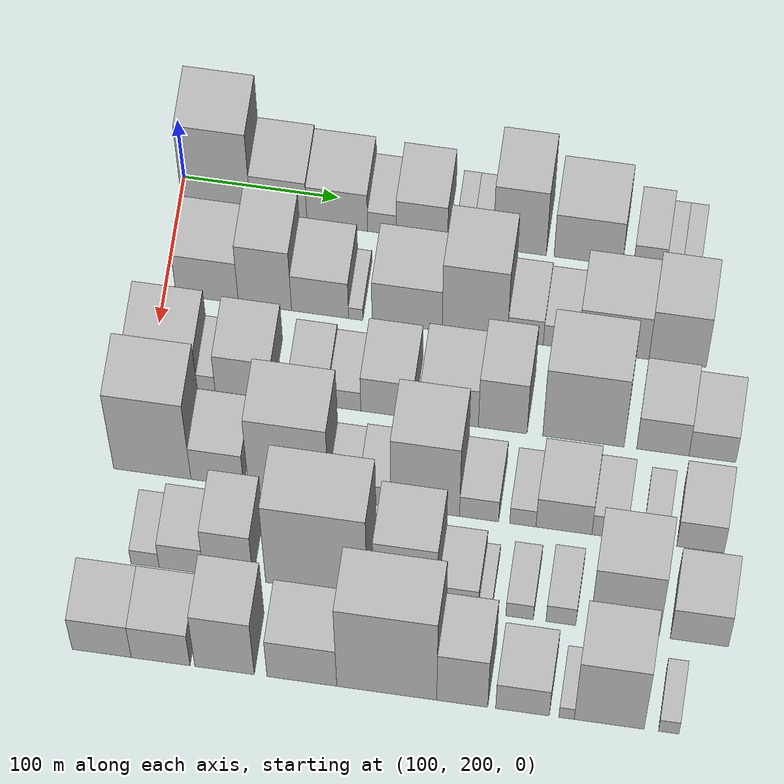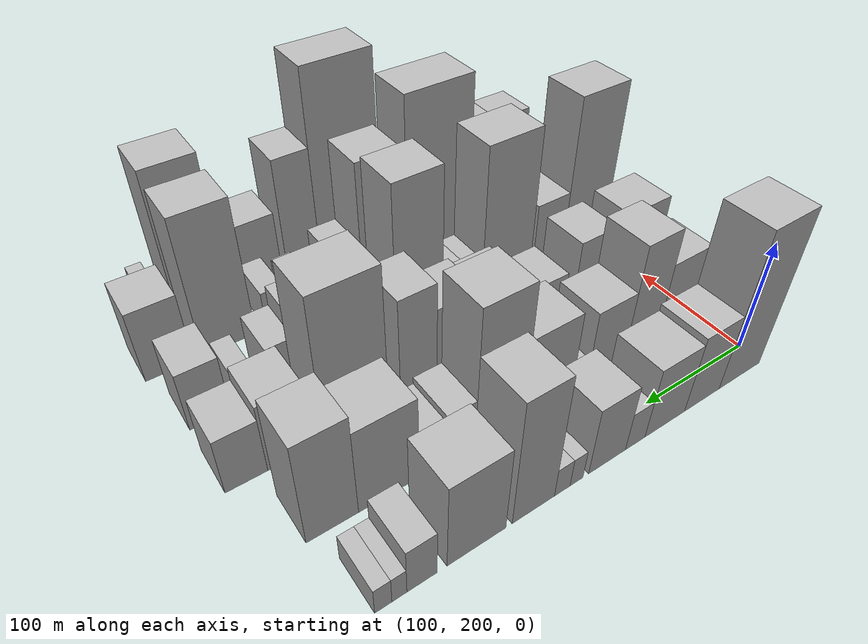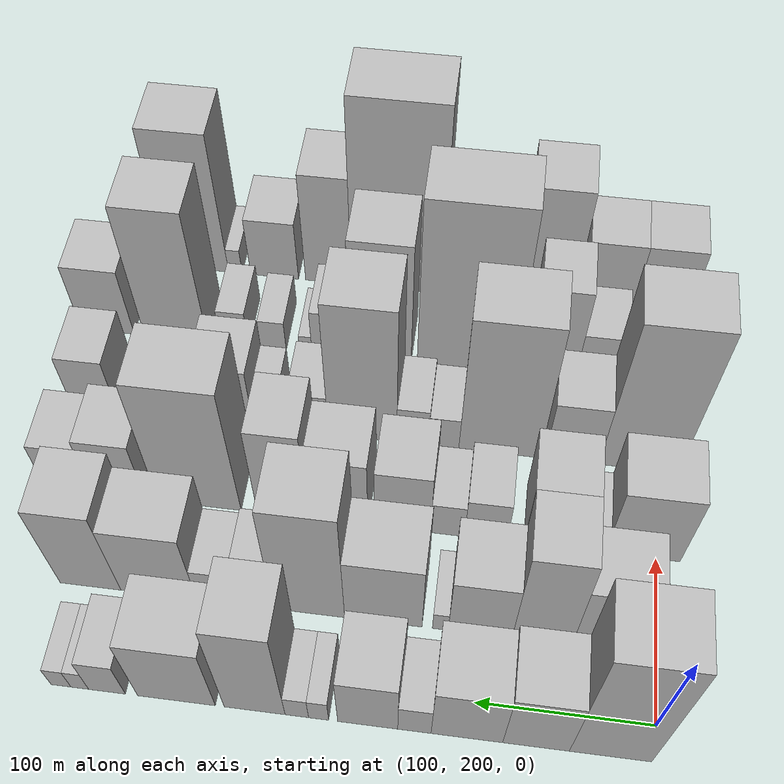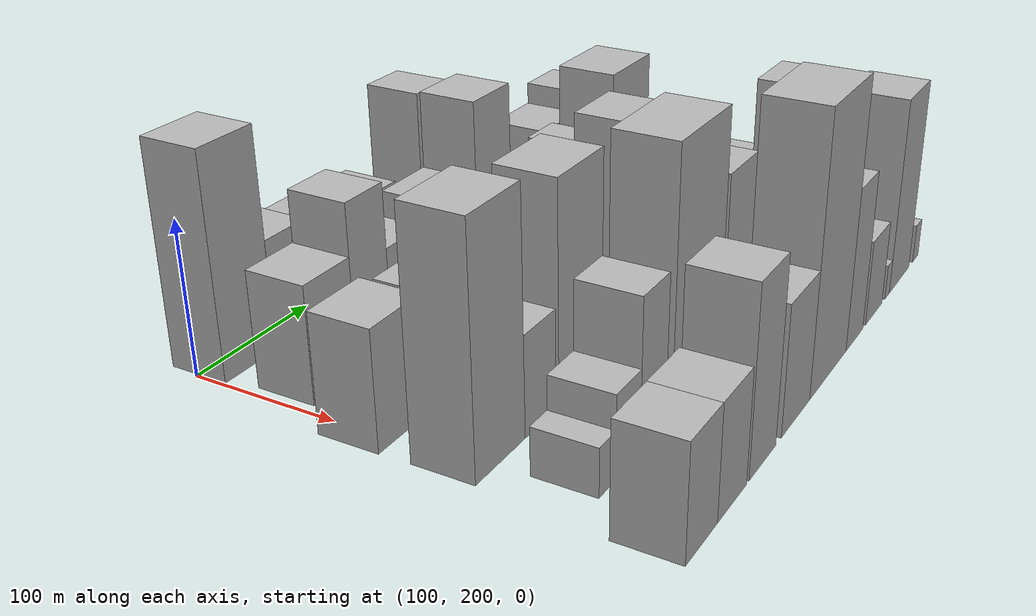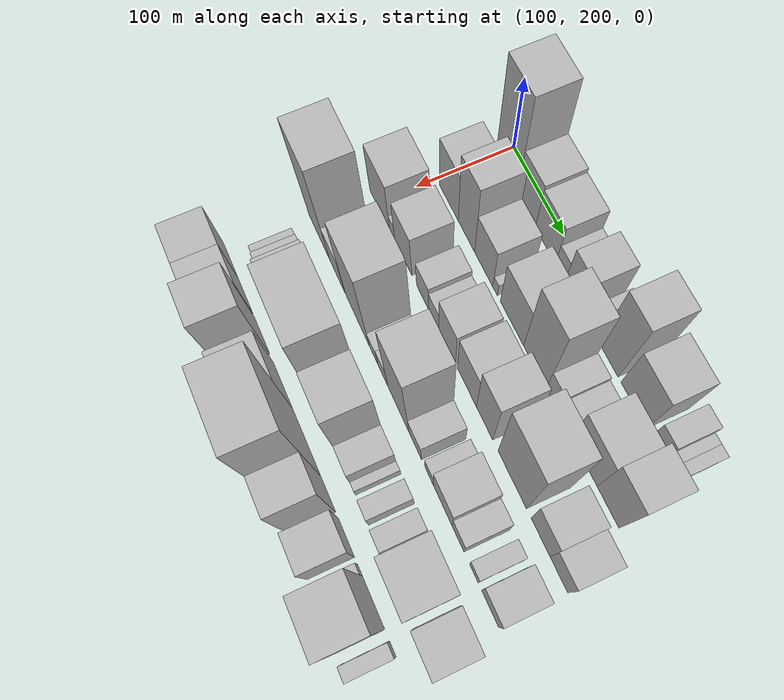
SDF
<sdf version="1.6">
 <world name="default">
  <model name="building_32">
   <static>1</static>
   <pose>100.0000 224.2471 0 0.000000 0.000000 0.000000</pose>
   <link name="link">
    <pose>0 0 72.00 0 0 0</pose>
    <collision name="collision"><geometry><box><size>40.0000 44.4804 144.0000</size></box></geometry></collision>
    <visual name="visual">
     <cast_shadows>0</cast_shadows>
     <geometry><box><size>40.0000 44.4804 144.0000</size></box></geometry>
     <material>
      <script>
       <uri>model://HANNAS_wall/materials/scripts</uri>
       <uri>model://HANNAS_wall/materials/textures</uri>
       <name>vrc/HANNAS_wall</name>
      </script>
     </material>
    </visual>
   </link>
  </model>
  <model name="building_33">
   <static>1</static>
   <pose>100.0000 264.6315 0 0.000000 0.000000 0.000000</pose>
   <link name="link">
    <pose>0 0 36.00 0 0 0</pose>
    <collision name="collision"><geometry><box><size>40.0000 36.2884 72.0000</size></box></geometry></collision>
    <visual name="visual">
     <cast_shadows>0</cast_shadows>
     <geometry><box><size>40.0000 36.2884 72.0000</size></box></geometry>
     <material>
      <script>
       <uri>model://HANNAS_wall/materials/scripts</uri>
       <uri>model://HANNAS_wall/materials/textures</uri>
       <name>vrc/HANNAS_wall</name>
      </script>
     </material>
    </visual>
   </link>
  </model>
  <model name="building_34">
   <static>1</static>
   <pose>100.0000 302.4038 0 0.000000 0.000000 0.000000</pose>
   <link name="link">
    <pose>0 0 33.00 0 0 0</pose>
    <collision name="collision"><geometry><box><size>40.0000 39.2563 66.0000</size></box></geometry></collision>
    <visual name="visual">
     <cast_shadows>0</cast_shadows>
     <geometry><box><size>40.0000 39.2563 66.0000</size></box></geometry>
     <material>
      <script>
       <uri>model://HANNAS_wall/materials/scripts</uri>
       <uri>model://HANNAS_wall/materials/textures</uri>
       <name>vrc/HANNAS_wall</name>
      </script>
     </material>
    </visual>
   </link>
  </model>
  <model name="building_35">
   <static>1</static>
   <pose>100.0000 331.2191 0 0.000000 0.000000 0.000000</pose>
   <link name="link">
    <pose>0 0 18.00 0 0 0</pose>
    <collision name="collision"><geometry><box><size>40.0000 18.3743 36.0000</size></box></geometry></collision>
    <visual name="visual">
     <cast_shadows>0</cast_shadows>
     <geometry><box><size>40.0000 18.3743 36.0000</size></box></geometry>
     <material>
      <script>
       <uri>model://HANNAS_wall/materials/scripts</uri>
       <uri>model://HANNAS_wall/materials/textures</uri>
       <name>vrc/HANNAS_wall</name>
      </script>
     </material>
    </visual>
   </link>
  </model>
  <model name="building_36">
   <static>1</static>
   <pose>100.0000 357.0505 0 0.000000 0.000000 0.000000</pose>
   <link name="link">
    <pose>0 0 31.50 0 0 0</pose>
    <collision name="collision"><geometry><box><size>40.0000 33.2884 63.0000</size></box></geometry></collision>
    <visual name="visual">
     <cast_shadows>0</cast_shadows>
     <geometry><box><size>40.0000 33.2884 63.0000</size></box></geometry>
     <material>
      <script>
       <uri>model://HANNAS_wall/materials/scripts</uri>
       <uri>model://HANNAS_wall/materials/textures</uri>
       <name>vrc/HANNAS_wall</name>
      </script>
     </material>
    </visual>
   </link>
  </model>
  <model name="building_37">
   <static>1</static>
   <pose>100.0000 384.2856 0 0.000000 0.000000 0.000000</pose>
   <link name="link">
    <pose>0 0 13.50 0 0 0</pose>
    <collision name="collision"><geometry><box><size>40.0000 11.1817 27.0000</size></box></geometry></collision>
    <visual name="visual">
     <cast_shadows>0</cast_shadows>
     <geometry><box><size>40.0000 11.1817 27.0000</size></box></geometry>
     <material>
      <script>
       <uri>model://HANNAS_wall/materials/scripts</uri>
       <uri>model://HANNAS_wall/materials/textures</uri>
       <name>vrc/HANNAS_wall</name>
      </script>
     </material>
    </visual>
   </link>
  </model>
  <model name="building_38">
   <static>1</static>
   <pose>100.0000 396.4469 0 0.000000 0.000000 0.000000</pose>
   <link name="link">
    <pose>0 0 13.50 0 0 0</pose>
    <collision name="collision"><geometry><box><size>40.0000 13.1409 27.0000</size></box></geometry></collision>
    <visual name="visual">
     <cast_shadows>0</cast_shadows>
     <geometry><box><size>40.0000 13.1409 27.0000</size></box></geometry>
     <material>
      <script>
       <uri>model://HANNAS_wall/materials/scripts</uri>
       <uri>model://HANNAS_wall/materials/textures</uri>
       <name>vrc/HANNAS_wall</name>
      </script>
     </material>
    </visual>
   </link>
  </model>
  <model name="building_39">
   <static>1</static>
   <pose>100.0000 420.1435 0 0.000000 0.000000 0.000000</pose>
   <link name="link">
    <pose>0 0 57.00 0 0 0</pose>
    <collision name="collision"><geometry><box><size>40.0000 34.2521 114.0000</size></box></geometry></collision>
    <visual name="visual">
     <cast_shadows>0</cast_shadows>
     <geometry><box><size>40.0000 34.2521 114.0000</size></box></geometry>
     <material>
      <script>
       <uri>model://HANNAS_wall/materials/scripts</uri>
       <uri>model://HANNAS_wall/materials/textures</uri>
       <name>vrc/HANNAS_wall</name>
      </script>
     </material>
    </visual>
   </link>
  </model>
  <model name="building_40">
   <static>1</static>
   <pose>100.0000 464.3153 0 0.000000 0.000000 0.000000</pose>
   <link name="link">
    <pose>0 0 39.00 0 0 0</pose>
    <collision name="collision"><geometry><box><size>40.0000 44.0917 78.0000</size></box></geometry></collision>
    <visual name="visual">
     <cast_shadows>0</cast_shadows>
     <geometry><box><size>40.0000 44.0917 78.0000</size></box></geometry>
     <material>
      <script>
       <uri>model://HANNAS_wall/materials/scripts</uri>
       <uri>model://HANNAS_wall/materials/textures</uri>
       <name>vrc/HANNAS_wall</name>
      </script>
     </material>
    </visual>
   </link>
  </model>
  <model name="building_41">
   <static>1</static>
   <pose>100.0000 503.8851 0 0.000000 0.000000 0.000000</pose>
   <link name="link">
    <pose>0 0 21.00 0 0 0</pose>
    <collision name="collision"><geometry><box><size>40.0000 21.0478 42.0000</size></box></geometry></collision>
    <visual name="visual">
     <cast_shadows>0</cast_shadows>
     <geometry><box><size>40.0000 21.0478 42.0000</size></box></geometry>
     <material>
      <script>
       <uri>model://HANNAS_wall/materials/scripts</uri>
       <uri>model://HANNAS_wall/materials/textures</uri>
       <name>vrc/HANNAS_wall</name>
      </script>
     </material>
    </visual>
   </link>
  </model>
  <model name="building_42">
   <static>1</static>
   <pose>100.0000 519.4775 0 0.000000 0.000000 0.000000</pose>
   <link name="link">
    <pose>0 0 12.00 0 0 0</pose>
    <collision name="collision"><geometry><box><size>40.0000 10.1371 24.0000</size></box></geometry></collision>
    <visual name="visual">
     <cast_shadows>0</cast_shadows>
     <geometry><box><size>40.0000 10.1371 24.0000</size></box></geometry>
     <material>
      <script>
       <uri>model://HANNAS_wall/materials/scripts</uri>
       <uri>model://HANNAS_wall/materials/textures</uri>
       <name>vrc/HANNAS_wall</name>
      </script>
     </material>
    </visual>
   </link>
  </model>
  <model name="building_43">
   <static>1</static>
   <pose>100.0000 530.2775 0 0.000000 0.000000 0.000000</pose>
   <link name="link">
    <pose>0 0 12.00 0 0 0</pose>
    <collision name="collision"><geometry><box><size>40.0000 11.4629 24.0000</size></box></geometry></collision>
    <visual name="visual">
     <cast_shadows>0</cast_shadows>
     <geometry><box><size>40.0000 11.4629 24.0000</size></box></geometry>
     <material>
      <script>
       <uri>model://HANNAS_wall/materials/scripts</uri>
       <uri>model://HANNAS_wall/materials/textures</uri>
       <name>vrc/HANNAS_wall</name>
      </script>
     </material>
    </visual>
   </link>
  </model>
  <model name="building_90">
   <static>1</static>
   <pose>160.0000 227.5681 0 0.000000 0.000000 0.000000</pose>
   <link name="link">
    <pose>0 0 37.50 0 0 0</pose>
    <collision name="collision"><geometry><box><size>40.0000 40.2094 75.0000</size></box></geometry></collision>
    <visual name="visual">
     <cast_shadows>0</cast_shadows>
     <geometry><box><size>40.0000 40.2094 75.0000</size></box></geometry>
     <material>
      <script>
       <uri>model://HANNAS_wall/materials/scripts</uri>
       <uri>model://HANNAS_wall/materials/textures</uri>
       <name>vrc/HANNAS_wall</name>
      </script>
     </material>
    </visual>
   </link>
  </model>
  <model name="building_91">
   <static>1</static>
   <pose>160.0000 264.7622 0 0.000000 0.000000 0.000000</pose>
   <link name="link">
    <pose>0 0 54.00 0 0 0</pose>
    <collision name="collision"><geometry><box><size>40.0000 34.1789 108.0000</size></box></geometry></collision>
    <visual name="visual">
     <cast_shadows>0</cast_shadows>
     <geometry><box><size>40.0000 34.1789 108.0000</size></box></geometry>
     <material>
      <script>
       <uri>model://HANNAS_wall/materials/scripts</uri>
       <uri>model://HANNAS_wall/materials/textures</uri>
       <name>vrc/HANNAS_wall</name>
      </script>
     </material>
    </visual>
   </link>
  </model>
  <model name="building_92">
   <static>1</static>
   <pose>160.0000 300.2078 0 0.000000 0.000000 0.000000</pose>
   <link name="link">
    <pose>0 0 33.00 0 0 0</pose>
    <collision name="collision"><geometry><box><size>40.0000 36.7122 66.0000</size></box></geometry></collision>
    <visual name="visual">
     <cast_shadows>0</cast_shadows>
     <geometry><box><size>40.0000 36.7122 66.0000</size></box></geometry>
     <material>
      <script>
       <uri>model://HANNAS_wall/materials/scripts</uri>
       <uri>model://HANNAS_wall/materials/textures</uri>
       <name>vrc/HANNAS_wall</name>
      </script>
     </material>
    </visual>
   </link>
  </model>
  <model name="building_93">
   <static>1</static>
   <pose>160.0000 323.1250 0 0.000000 0.000000 0.000000</pose>
   <link name="link">
    <pose>0 0 10.50 0 0 0</pose>
    <collision name="collision"><geometry><box><size>40.0000 9.1222 21.0000</size></box></geometry></collision>
    <visual name="visual">
     <cast_shadows>0</cast_shadows>
     <geometry><box><size>40.0000 9.1222 21.0000</size></box></geometry>
     <material>
      <script>
       <uri>model://HANNAS_wall/materials/scripts</uri>
       <uri>model://HANNAS_wall/materials/textures</uri>
       <name>vrc/HANNAS_wall</name>
      </script>
     </material>
    </visual>
   </link>
  </model>
  <model name="building_94">
   <static>1</static>
   <pose>160.0000 356.1797 0 0.000000 0.000000 0.000000</pose>
   <link name="link">
    <pose>0 0 37.50 0 0 0</pose>
    <collision name="collision"><geometry><box><size>40.0000 44.9871 75.0000</size></box></geometry></collision>
    <visual name="visual">
     <cast_shadows>0</cast_shadows>
     <geometry><box><size>40.0000 44.9871 75.0000</size></box></geometry>
     <material>
      <script>
       <uri>model://HANNAS_wall/materials/scripts</uri>
       <uri>model://HANNAS_wall/materials/textures</uri>
       <name>vrc/HANNAS_wall</name>
      </script>
     </material>
    </visual>
   </link>
  </model>
  <model name="building_95">
   <static>1</static>
   <pose>160.0000 399.6302 0 0.000000 0.000000 0.000000</pose>
   <link name="link">
    <pose>0 0 63.00 0 0 0</pose>
    <collision name="collision"><geometry><box><size>40.0000 41.9140 126.0000</size></box></geometry></collision>
    <visual name="visual">
     <cast_shadows>0</cast_shadows>
     <geometry><box><size>40.0000 41.9140 126.0000</size></box></geometry>
     <material>
      <script>
       <uri>model://HANNAS_wall/materials/scripts</uri>
       <uri>model://HANNAS_wall/materials/textures</uri>
       <name>vrc/HANNAS_wall</name>
      </script>
     </material>
    </visual>
   </link>
  </model>
  <model name="building_96">
   <static>1</static>
   <pose>160.0000 432.0486 0 0.000000 0.000000 0.000000</pose>
   <link name="link">
    <pose>0 0 22.50 0 0 0</pose>
    <collision name="collision"><geometry><box><size>40.0000 22.9228 45.0000</size></box></geometry></collision>
    <visual name="visual">
     <cast_shadows>0</cast_shadows>
     <geometry><box><size>40.0000 22.9228 45.0000</size></box></geometry>
     <material>
      <script>
       <uri>model://HANNAS_wall/materials/scripts</uri>
       <uri>model://HANNAS_wall/materials/textures</uri>
       <name>vrc/HANNAS_wall</name>
      </script>
     </material>
    </visual>
   </link>
  </model>
  <model name="building_97">
   <static>1</static>
   <pose>160.0000 454.7128 0 0.000000 0.000000 0.000000</pose>
   <link name="link">
    <pose>0 0 19.50 0 0 0</pose>
    <collision name="collision"><geometry><box><size>40.0000 22.4056 39.0000</size></box></geometry></collision>
    <visual name="visual">
     <cast_shadows>0</cast_shadows>
     <geometry><box><size>40.0000 22.4056 39.0000</size></box></geometry>
     <material>
      <script>
       <uri>model://HANNAS_wall/materials/scripts</uri>
       <uri>model://HANNAS_wall/materials/textures</uri>
       <name>vrc/HANNAS_wall</name>
      </script>
     </material>
    </visual>
   </link>
  </model>
  <model name="building_98">
   <static>1</static>
   <pose>160.0000 488.5397 0 0.000000 0.000000 0.000000</pose>
   <link name="link">
    <pose>0 0 39.00 0 0 0</pose>
    <collision name="collision"><geometry><box><size>40.0000 45.2482 78.0000</size></box></geometry></collision>
    <visual name="visual">
     <cast_shadows>0</cast_shadows>
     <geometry><box><size>40.0000 45.2482 78.0000</size></box></geometry>
     <material>
      <script>
       <uri>model://HANNAS_wall/materials/scripts</uri>
       <uri>model://HANNAS_wall/materials/textures</uri>
       <name>vrc/HANNAS_wall</name>
      </script>
     </material>
    </visual>
   </link>
  </model>
  <model name="building_99">
   <static>1</static>
   <pose>160.0000 529.4853 0 0.000000 0.000000 0.000000</pose>
   <link name="link">
    <pose>0 0 46.50 0 0 0</pose>
    <collision name="collision"><geometry><box><size>40.0000 36.6429 93.0000</size></box></geometry></collision>
    <visual name="visual">
     <cast_shadows>0</cast_shadows>
     <geometry><box><size>40.0000 36.6429 93.0000</size></box></geometry>
     <material>
      <script>
       <uri>model://HANNAS_wall/materials/scripts</uri>
       <uri>model://HANNAS_wall/materials/textures</uri>
       <name>vrc/HANNAS_wall</name>
      </script>
     </material>
    </visual>
   </link>
  </model>
  <model name="building_139">
   <static>1</static>
   <pose>220.0000 208.1897 0 0.000000 0.000000 0.000000</pose>
   <link name="link">
    <pose>0 0 37.50 0 0 0</pose>
    <collision name="collision"><geometry><box><size>40.0000 44.5351 75.0000</size></box></geometry></collision>
    <visual name="visual">
     <cast_shadows>0</cast_shadows>
     <geometry><box><size>40.0000 44.5351 75.0000</size></box></geometry>
     <material>
      <script>
       <uri>model://HANNAS_wall/materials/scripts</uri>
       <uri>model://HANNAS_wall/materials/textures</uri>
       <name>vrc/HANNAS_wall</name>
      </script>
     </material>
    </visual>
   </link>
  </model>
  <model name="building_140">
   <static>1</static>
   <pose>220.0000 236.2144 0 0.000000 0.000000 0.000000</pose>
   <link name="link">
    <pose>0 0 13.50 0 0 0</pose>
    <collision name="collision"><geometry><box><size>40.0000 11.5143 27.0000</size></box></geometry></collision>
    <visual name="visual">
     <cast_shadows>0</cast_shadows>
     <geometry><box><size>40.0000 11.5143 27.0000</size></box></geometry>
     <material>
      <script>
       <uri>model://HANNAS_wall/materials/scripts</uri>
       <uri>model://HANNAS_wall/materials/textures</uri>
       <name>vrc/HANNAS_wall</name>
      </script>
     </material>
    </visual>
   </link>
  </model>
  <model name="building_141">
   <static>1</static>
   <pose>220.0000 260.5052 0 0.000000 0.000000 0.000000</pose>
   <link name="link">
    <pose>0 0 34.50 0 0 0</pose>
    <collision name="collision"><geometry><box><size>40.0000 37.0672 69.0000</size></box></geometry></collision>
    <visual name="visual">
     <cast_shadows>0</cast_shadows>
     <geometry><box><size>40.0000 37.0672 69.0000</size></box></geometry>
     <material>
      <script>
       <uri>model://HANNAS_wall/materials/scripts</uri>
       <uri>model://HANNAS_wall/materials/textures</uri>
       <name>vrc/HANNAS_wall</name>
      </script>
     </material>
    </visual>
   </link>
  </model>
  <model name="building_142">
   <static>1</static>
   <pose>220.0000 301.9159 0 0.000000 0.000000 0.000000</pose>
   <link name="link">
    <pose>0 0 22.50 0 0 0</pose>
    <collision name="collision"><geometry><box><size>40.0000 25.7541 45.0000</size></box></geometry></collision>
    <visual name="visual">
     <cast_shadows>0</cast_shadows>
     <geometry><box><size>40.0000 25.7541 45.0000</size></box></geometry>
     <material>
      <script>
       <uri>model://HANNAS_wall/materials/scripts</uri>
       <uri>model://HANNAS_wall/materials/textures</uri>
       <name>vrc/HANNAS_wall</name>
      </script>
     </material>
    </visual>
   </link>
  </model>
  <model name="building_143">
   <static>1</static>
   <pose>220.0000 325.0281 0 0.000000 0.000000 0.000000</pose>
   <link name="link">
    <pose>0 0 18.00 0 0 0</pose>
    <collision name="collision"><geometry><box><size>40.0000 20.4703 36.0000</size></box></geometry></collision>
    <visual name="visual">
     <cast_shadows>0</cast_shadows>
     <geometry><box><size>40.0000 20.4703 36.0000</size></box></geometry>
     <material>
      <script>
       <uri>model://HANNAS_wall/materials/scripts</uri>
       <uri>model://HANNAS_wall/materials/textures</uri>
       <name>vrc/HANNAS_wall</name>
      </script>
     </material>
    </visual>
   </link>
  </model>
  <model name="building_144">
   <static>1</static>
   <pose>220.0000 352.2431 0 0.000000 0.000000 0.000000</pose>
   <link name="link">
    <pose>0 0 33.00 0 0 0</pose>
    <collision name="collision"><geometry><box><size>40.0000 33.9598 66.0000</size></box></geometry></collision>
    <visual name="visual">
     <cast_shadows>0</cast_shadows>
     <geometry><box><size>40.0000 33.9598 66.0000</size></box></geometry>
     <material>
      <script>
       <uri>model://HANNAS_wall/materials/scripts</uri>
       <uri>model://HANNAS_wall/materials/textures</uri>
       <name>vrc/HANNAS_wall</name>
      </script>
     </material>
    </visual>
   </link>
  </model>
  <model name="building_145">
   <static>1</static>
   <pose>220.0000 391.7662 0 0.000000 0.000000 0.000000</pose>
   <link name="link">
    <pose>0 0 36.00 0 0 0</pose>
    <collision name="collision"><geometry><box><size>40.0000 37.0864 72.0000</size></box></geometry></collision>
    <visual name="visual">
     <cast_shadows>0</cast_shadows>
     <geometry><box><size>40.0000 37.0864 72.0000</size></box></geometry>
     <material>
      <script>
       <uri>model://HANNAS_wall/materials/scripts</uri>
       <uri>model://HANNAS_wall/materials/textures</uri>
       <name>vrc/HANNAS_wall</name>
      </script>
     </material>
    </visual>
   </link>
  </model>
  <model name="building_146">
   <static>1</static>
   <pose>220.0000 425.8206 0 0.000000 0.000000 0.000000</pose>
   <link name="link">
    <pose>0 0 48.00 0 0 0</pose>
    <collision name="collision"><geometry><box><size>40.0000 31.0226 96.0000</size></box></geometry></collision>
    <visual name="visual">
     <cast_shadows>0</cast_shadows>
     <geometry><box><size>40.0000 31.0226 96.0000</size></box></geometry>
     <material>
      <script>
       <uri>model://HANNAS_wall/materials/scripts</uri>
       <uri>model://HANNAS_wall/materials/textures</uri>
       <name>vrc/HANNAS_wall</name>
      </script>
     </material>
    </visual>
   </link>
  </model>
  <model name="building_147">
   <static>1</static>
   <pose>220.0000 477.2447 0 0.000000 0.000000 0.000000</pose>
   <link name="link">
    <pose>0 0 66.00 0 0 0</pose>
    <collision name="collision"><geometry><box><size>40.0000 51.8256 132.0000</size></box></geometry></collision>
    <visual name="visual">
     <cast_shadows>0</cast_shadows>
     <geometry><box><size>40.0000 51.8256 132.0000</size></box></geometry>
     <material>
      <script>
       <uri>model://HANNAS_wall/materials/scripts</uri>
       <uri>model://HANNAS_wall/materials/textures</uri>
       <name>vrc/HANNAS_wall</name>
      </script>
     </material>
    </visual>
   </link>
  </model>
  <model name="building_148">
   <static>1</static>
   <pose>220.0000 527.7632 0 0.000000 0.000000 0.000000</pose>
   <link name="link">
    <pose>0 0 31.50 0 0 0</pose>
    <collision name="collision"><geometry><box><size>40.0000 33.2115 63.0000</size></box></geometry></collision>
    <visual name="visual">
     <cast_shadows>0</cast_shadows>
     <geometry><box><size>40.0000 33.2115 63.0000</size></box></geometry>
     <material>
      <script>
       <uri>model://HANNAS_wall/materials/scripts</uri>
       <uri>model://HANNAS_wall/materials/textures</uri>
       <name>vrc/HANNAS_wall</name>
      </script>
     </material>
    </visual>
   </link>
  </model>
  <model name="building_149">
   <static>1</static>
   <pose>220.0000 559.2842 0 0.000000 0.000000 0.000000</pose>
   <link name="link">
    <pose>0 0 25.50 0 0 0</pose>
    <collision name="collision"><geometry><box><size>40.0000 29.8304 51.0000</size></box></geometry></collision>
    <visual name="visual">
     <cast_shadows>0</cast_shadows>
     <geometry><box><size>40.0000 29.8304 51.0000</size></box></geometry>
     <material>
      <script>
       <uri>model://HANNAS_wall/materials/scripts</uri>
       <uri>model://HANNAS_wall/materials/textures</uri>
       <name>vrc/HANNAS_wall</name>
      </script>
     </material>
    </visual>
   </link>
  </model>
  <model name="building_196">
   <static>1</static>
   <pose>280.0000 211.3406 0 0.000000 0.000000 0.000000</pose>
   <link name="link">
    <pose>0 0 75.00 0 0 0</pose>
    <collision name="collision"><geometry><box><size>40.0000 49.2600 150.0000</size></box></geometry></collision>
    <visual name="visual">
     <cast_shadows>0</cast_shadows>
     <geometry><box><size>40.0000 49.2600 150.0000</size></box></geometry>
     <material>
      <script>
       <uri>model://HANNAS_wall/materials/scripts</uri>
       <uri>model://HANNAS_wall/materials/textures</uri>
       <name>vrc/HANNAS_wall</name>
      </script>
     </material>
    </visual>
   </link>
  </model>
  <model name="building_197">
   <static>1</static>
   <pose>280.0000 252.7806 0 0.000000 0.000000 0.000000</pose>
   <link name="link">
    <pose>0 0 31.50 0 0 0</pose>
    <collision name="collision"><geometry><box><size>40.0000 33.6201 63.0000</size></box></geometry></collision>
    <visual name="visual">
     <cast_shadows>0</cast_shadows>
     <geometry><box><size>40.0000 33.6201 63.0000</size></box></geometry>
     <material>
      <script>
       <uri>model://HANNAS_wall/materials/scripts</uri>
       <uri>model://HANNAS_wall/materials/textures</uri>
       <name>vrc/HANNAS_wall</name>
      </script>
     </material>
    </visual>
   </link>
  </model>
  <model name="building_198">
   <static>1</static>
   <pose>280.0000 298.1709 0 0.000000 0.000000 0.000000</pose>
   <link name="link">
    <pose>0 0 69.00 0 0 0</pose>
    <collision name="collision"><geometry><box><size>40.0000 51.1604 138.0000</size></box></geometry></collision>
    <visual name="visual">
     <cast_shadows>0</cast_shadows>
     <geometry><box><size>40.0000 51.1604 138.0000</size></box></geometry>
     <material>
      <script>
       <uri>model://HANNAS_wall/materials/scripts</uri>
       <uri>model://HANNAS_wall/materials/textures</uri>
       <name>vrc/HANNAS_wall</name>
      </script>
     </material>
    </visual>
   </link>
  </model>
  <model name="building_199">
   <static>1</static>
   <pose>280.0000 333.2838 0 0.000000 0.000000 0.000000</pose>
   <link name="link">
    <pose>0 0 16.50 0 0 0</pose>
    <collision name="collision"><geometry><box><size>40.0000 19.0655 33.0000</size></box></geometry></collision>
    <visual name="visual">
     <cast_shadows>0</cast_shadows>
     <geometry><box><size>40.0000 19.0655 33.0000</size></box></geometry>
     <material>
      <script>
       <uri>model://HANNAS_wall/materials/scripts</uri>
       <uri>model://HANNAS_wall/materials/textures</uri>
       <name>vrc/HANNAS_wall</name>
      </script>
     </material>
    </visual>
   </link>
  </model>
  <model name="building_200">
   <static>1</static>
   <pose>280.0000 352.9826 0 0.000000 0.000000 0.000000</pose>
   <link name="link">
    <pose>0 0 19.50 0 0 0</pose>
    <collision name="collision"><geometry><box><size>40.0000 20.3321 39.0000</size></box></geometry></collision>
    <visual name="visual">
     <cast_shadows>0</cast_shadows>
     <geometry><box><size>40.0000 20.3321 39.0000</size></box></geometry>
     <material>
      <script>
       <uri>model://HANNAS_wall/materials/scripts</uri>
       <uri>model://HANNAS_wall/materials/textures</uri>
       <name>vrc/HANNAS_wall</name>
      </script>
     </material>
    </visual>
   </link>
  </model>
  <model name="building_201">
   <static>1</static>
   <pose>280.0000 384.9450 0 0.000000 0.000000 0.000000</pose>
   <link name="link">
    <pose>0 0 69.00 0 0 0</pose>
    <collision name="collision"><geometry><box><size>40.0000 43.5925 138.0000</size></box></geometry></collision>
    <visual name="visual">
     <cast_shadows>0</cast_shadows>
     <geometry><box><size>40.0000 43.5925 138.0000</size></box></geometry>
     <material>
      <script>
       <uri>model://HANNAS_wall/materials/scripts</uri>
       <uri>model://HANNAS_wall/materials/textures</uri>
       <name>vrc/HANNAS_wall</name>
      </script>
     </material>
    </visual>
   </link>
  </model>
  <model name="building_202">
   <static>1</static>
   <pose>280.0000 419.1612 0 0.000000 0.000000 0.000000</pose>
   <link name="link">
    <pose>0 0 21.00 0 0 0</pose>
    <collision name="collision"><geometry><box><size>40.0000 24.8400 42.0000</size></box></geometry></collision>
    <visual name="visual">
     <cast_shadows>0</cast_shadows>
     <geometry><box><size>40.0000 24.8400 42.0000</size></box></geometry>
     <material>
      <script>
       <uri>model://HANNAS_wall/materials/scripts</uri>
       <uri>model://HANNAS_wall/materials/textures</uri>
       <name>vrc/HANNAS_wall</name>
      </script>
     </material>
    </visual>
   </link>
  </model>
  <model name="building_203">
   <static>1</static>
   <pose>280.0000 446.9221 0 0.000000 0.000000 0.000000</pose>
   <link name="link">
    <pose>0 0 16.50 0 0 0</pose>
    <collision name="collision"><geometry><box><size>40.0000 16.6818 33.0000</size></box></geometry></collision>
    <visual name="visual">
     <cast_shadows>0</cast_shadows>
     <geometry><box><size>40.0000 16.6818 33.0000</size></box></geometry>
     <material>
      <script>
       <uri>model://HANNAS_wall/materials/scripts</uri>
       <uri>model://HANNAS_wall/materials/textures</uri>
       <name>vrc/HANNAS_wall</name>
      </script>
     </material>
    </visual>
   </link>
  </model>
  <model name="building_204">
   <static>1</static>
   <pose>280.0000 472.9534 0 0.000000 0.000000 0.000000</pose>
   <link name="link">
    <pose>0 0 30.00 0 0 0</pose>
    <collision name="collision"><geometry><box><size>40.0000 35.3808 60.0000</size></box></geometry></collision>
    <visual name="visual">
     <cast_shadows>0</cast_shadows>
     <geometry><box><size>40.0000 35.3808 60.0000</size></box></geometry>
     <material>
      <script>
       <uri>model://HANNAS_wall/materials/scripts</uri>
       <uri>model://HANNAS_wall/materials/textures</uri>
       <name>vrc/HANNAS_wall</name>
      </script>
     </material>
    </visual>
   </link>
  </model>
  <model name="building_205">
   <static>1</static>
   <pose>280.0000 501.6005 0 0.000000 0.000000 0.000000</pose>
   <link name="link">
    <pose>0 0 21.00 0 0 0</pose>
    <collision name="collision"><geometry><box><size>40.0000 21.9134 42.0000</size></box></geometry></collision>
    <visual name="visual">
     <cast_shadows>0</cast_shadows>
     <geometry><box><size>40.0000 21.9134 42.0000</size></box></geometry>
     <material>
      <script>
       <uri>model://HANNAS_wall/materials/scripts</uri>
       <uri>model://HANNAS_wall/materials/textures</uri>
       <name>vrc/HANNAS_wall</name>
      </script>
     </material>
    </visual>
   </link>
  </model>
  <model name="building_206">
   <static>1</static>
   <pose>280.0000 530.4295 0 0.000000 0.000000 0.000000</pose>
   <link name="link">
    <pose>0 0 15.00 0 0 0</pose>
    <collision name="collision"><geometry><box><size>40.0000 15.7447 30.0000</size></box></geometry></collision>
    <visual name="visual">
     <cast_shadows>0</cast_shadows>
     <geometry><box><size>40.0000 15.7447 30.0000</size></box></geometry>
     <material>
      <script>
       <uri>model://HANNAS_wall/materials/scripts</uri>
       <uri>model://HANNAS_wall/materials/textures</uri>
       <name>vrc/HANNAS_wall</name>
      </script>
     </material>
    </visual>
   </link>
  </model>
  <model name="building_207">
   <static>1</static>
   <pose>280.0000 559.2803 0 0.000000 0.000000 0.000000</pose>
   <link name="link">
    <pose>0 0 27.00 0 0 0</pose>
    <collision name="collision"><geometry><box><size>40.0000 29.9569 54.0000</size></box></geometry></collision>
    <visual name="visual">
     <cast_shadows>0</cast_shadows>
     <geometry><box><size>40.0000 29.9569 54.0000</size></box></geometry>
     <material>
      <script>
       <uri>model://HANNAS_wall/materials/scripts</uri>
       <uri>model://HANNAS_wall/materials/textures</uri>
       <name>vrc/HANNAS_wall</name>
      </script>
     </material>
    </visual>
   </link>
  </model>
  <model name="building_251">
   <static>1</static>
   <pose>340.0000 216.3370 0 0.000000 0.000000 0.000000</pose>
   <link name="link">
    <pose>0 0 15.00 0 0 0</pose>
    <collision name="collision"><geometry><box><size>40.0000 17.9243 30.0000</size></box></geometry></collision>
    <visual name="visual">
     <cast_shadows>0</cast_shadows>
     <geometry><box><size>40.0000 17.9243 30.0000</size></box></geometry>
     <material>
      <script>
       <uri>model://HANNAS_wall/materials/scripts</uri>
       <uri>model://HANNAS_wall/materials/textures</uri>
       <name>vrc/HANNAS_wall</name>
      </script>
     </material>
    </visual>
   </link>
  </model>
  <model name="building_252">
   <static>1</static>
   <pose>340.0000 239.3645 0 0.000000 0.000000 0.000000</pose>
   <link name="link">
    <pose>0 0 25.50 0 0 0</pose>
    <collision name="collision"><geometry><box><size>40.0000 28.1309 51.0000</size></box></geometry></collision>
    <visual name="visual">
     <cast_shadows>0</cast_shadows>
     <geometry><box><size>40.0000 28.1309 51.0000</size></box></geometry>
     <material>
      <script>
       <uri>model://HANNAS_wall/materials/scripts</uri>
       <uri>model://HANNAS_wall/materials/textures</uri>
       <name>vrc/HANNAS_wall</name>
      </script>
     </material>
    </visual>
   </link>
  </model>
  <model name="building_253">
   <static>1</static>
   <pose>340.0000 269.1026 0 0.000000 0.000000 0.000000</pose>
   <link name="link">
    <pose>0 0 46.50 0 0 0</pose>
    <collision name="collision"><geometry><box><size>40.0000 31.3453 93.0000</size></box></geometry></collision>
    <visual name="visual">
     <cast_shadows>0</cast_shadows>
     <geometry><box><size>40.0000 31.3453 93.0000</size></box></geometry>
     <material>
      <script>
       <uri>model://HANNAS_wall/materials/scripts</uri>
       <uri>model://HANNAS_wall/materials/textures</uri>
       <name>vrc/HANNAS_wall</name>
      </script>
     </material>
    </visual>
   </link>
  </model>
  <model name="building_254">
   <static>1</static>
   <pose>340.0000 324.8723 0 0.000000 0.000000 0.000000</pose>
   <link name="link">
    <pose>0 0 81.00 0 0 0</pose>
    <collision name="collision"><geometry><box><size>40.0000 64.1941 162.0000</size></box></geometry></collision>
    <visual name="visual">
     <cast_shadows>0</cast_shadows>
     <geometry><box><size>40.0000 64.1941 162.0000</size></box></geometry>
     <material>
      <script>
       <uri>model://HANNAS_wall/materials/scripts</uri>
       <uri>model://HANNAS_wall/materials/textures</uri>
       <name>vrc/HANNAS_wall</name>
      </script>
     </material>
    </visual>
   </link>
  </model>
  <model name="building_255">
   <static>1</static>
   <pose>340.0000 381.1214 0 0.000000 0.000000 0.000000</pose>
   <link name="link">
    <pose>0 0 60.00 0 0 0</pose>
    <collision name="collision"><geometry><box><size>40.0000 40.3042 120.0000</size></box></geometry></collision>
    <visual name="visual">
     <cast_shadows>0</cast_shadows>
     <geometry><box><size>40.0000 40.3042 120.0000</size></box></geometry>
     <material>
      <script>
       <uri>model://HANNAS_wall/materials/scripts</uri>
       <uri>model://HANNAS_wall/materials/textures</uri>
       <name>vrc/HANNAS_wall</name>
      </script>
     </material>
    </visual>
   </link>
  </model>
  <model name="building_256">
   <static>1</static>
   <pose>340.0000 414.1692 0 0.000000 0.000000 0.000000</pose>
   <link name="link">
    <pose>0 0 22.50 0 0 0</pose>
    <collision name="collision"><geometry><box><size>40.0000 25.7913 45.0000</size></box></geometry></collision>
    <visual name="visual">
     <cast_shadows>0</cast_shadows>
     <geometry><box><size>40.0000 25.7913 45.0000</size></box></geometry>
     <material>
      <script>
       <uri>model://HANNAS_wall/materials/scripts</uri>
       <uri>model://HANNAS_wall/materials/textures</uri>
       <name>vrc/HANNAS_wall</name>
      </script>
     </material>
    </visual>
   </link>
  </model>
  <model name="building_257">
   <static>1</static>
   <pose>340.0000 431.2435 0 0.000000 0.000000 0.000000</pose>
   <link name="link">
    <pose>0 0 9.00 0 0 0</pose>
    <collision name="collision"><geometry><box><size>40.0000 8.3573 18.0000</size></box></geometry></collision>
    <visual name="visual">
     <cast_shadows>0</cast_shadows>
     <geometry><box><size>40.0000 8.3573 18.0000</size></box></geometry>
     <material>
      <script>
       <uri>model://HANNAS_wall/materials/scripts</uri>
       <uri>model://HANNAS_wall/materials/textures</uri>
       <name>vrc/HANNAS_wall</name>
      </script>
     </material>
    </visual>
   </link>
  </model>
  <model name="building_258">
   <static>1</static>
   <pose>340.0000 453.0812 0 0.000000 0.000000 0.000000</pose>
   <link name="link">
    <pose>0 0 15.00 0 0 0</pose>
    <collision name="collision"><geometry><box><size>40.0000 17.3181 30.0000</size></box></geometry></collision>
    <visual name="visual">
     <cast_shadows>0</cast_shadows>
     <geometry><box><size>40.0000 17.3181 30.0000</size></box></geometry>
     <material>
      <script>
       <uri>model://HANNAS_wall/materials/scripts</uri>
       <uri>model://HANNAS_wall/materials/textures</uri>
       <name>vrc/HANNAS_wall</name>
      </script>
     </material>
    </visual>
   </link>
  </model>
  <model name="building_259">
   <static>1</static>
   <pose>340.0000 479.1101 0 0.000000 0.000000 0.000000</pose>
   <link name="link">
    <pose>0 0 18.00 0 0 0</pose>
    <collision name="collision"><geometry><box><size>40.0000 18.7395 36.0000</size></box></geometry></collision>
    <visual name="visual">
     <cast_shadows>0</cast_shadows>
     <geometry><box><size>40.0000 18.7395 36.0000</size></box></geometry>
     <material>
      <script>
       <uri>model://HANNAS_wall/materials/scripts</uri>
       <uri>model://HANNAS_wall/materials/textures</uri>
       <name>vrc/HANNAS_wall</name>
      </script>
     </material>
    </visual>
   </link>
  </model>
  <model name="building_260">
   <static>1</static>
   <pose>340.0000 519.1974 0 0.000000 0.000000 0.000000</pose>
   <link name="link">
    <pose>0 0 64.50 0 0 0</pose>
    <collision name="collision"><geometry><box><size>40.0000 43.4353 129.0000</size></box></geometry></collision>
    <visual name="visual">
     <cast_shadows>0</cast_shadows>
     <geometry><box><size>40.0000 43.4353 129.0000</size></box></geometry>
     <material>
      <script>
       <uri>model://HANNAS_wall/materials/scripts</uri>
       <uri>model://HANNAS_wall/materials/textures</uri>
       <name>vrc/HANNAS_wall</name>
      </script>
     </material>
    </visual>
   </link>
  </model>
  <model name="building_261">
   <static>1</static>
   <pose>340.0000 566.2027 0 0.000000 0.000000 0.000000</pose>
   <link name="link">
    <pose>0 0 33.00 0 0 0</pose>
    <collision name="collision"><geometry><box><size>40.0000 36.5752 66.0000</size></box></geometry></collision>
    <visual name="visual">
     <cast_shadows>0</cast_shadows>
     <geometry><box><size>40.0000 36.5752 66.0000</size></box></geometry>
     <material>
      <script>
       <uri>model://HANNAS_wall/materials/scripts</uri>
       <uri>model://HANNAS_wall/materials/textures</uri>
       <name>vrc/HANNAS_wall</name>
      </script>
     </material>
    </visual>
   </link>
  </model>
  <model name="building_308">
   <static>1</static>
   <pose>400.0000 198.5815 0 0.000000 0.000000 0.000000</pose>
   <link name="link">
    <pose>0 0 34.50 0 0 0</pose>
    <collision name="collision"><geometry><box><size>40.0000 37.3196 69.0000</size></box></geometry></collision>
    <visual name="visual">
     <cast_shadows>0</cast_shadows>
     <geometry><box><size>40.0000 37.3196 69.0000</size></box></geometry>
     <material>
      <script>
       <uri>model://HANNAS_wall/materials/scripts</uri>
       <uri>model://HANNAS_wall/materials/textures</uri>
       <name>vrc/HANNAS_wall</name>
      </script>
     </material>
    </visual>
   </link>
  </model>
  <model name="building_309">
   <static>1</static>
   <pose>400.0000 235.7767 0 0.000000 0.000000 0.000000</pose>
   <link name="link">
    <pose>0 0 34.50 0 0 0</pose>
    <collision name="collision"><geometry><box><size>40.0000 37.0708 69.0000</size></box></geometry></collision>
    <visual name="visual">
     <cast_shadows>0</cast_shadows>
     <geometry><box><size>40.0000 37.0708 69.0000</size></box></geometry>
     <material>
      <script>
       <uri>model://HANNAS_wall/materials/scripts</uri>
       <uri>model://HANNAS_wall/materials/textures</uri>
       <name>vrc/HANNAS_wall</name>
      </script>
     </material>
    </visual>
   </link>
  </model>
  <model name="building_310">
   <static>1</static>
   <pose>400.0000 276.0330 0 0.000000 0.000000 0.000000</pose>
   <link name="link">
    <pose>0 0 57.00 0 0 0</pose>
    <collision name="collision"><geometry><box><size>40.0000 37.4419 114.0000</size></box></geometry></collision>
    <visual name="visual">
     <cast_shadows>0</cast_shadows>
     <geometry><box><size>40.0000 37.4419 114.0000</size></box></geometry>
     <material>
      <script>
       <uri>model://HANNAS_wall/materials/scripts</uri>
       <uri>model://HANNAS_wall/materials/textures</uri>
       <name>vrc/HANNAS_wall</name>
      </script>
     </material>
    </visual>
   </link>
  </model>
  <model name="building_311">
   <static>1</static>
   <pose>400.0000 324.6926 0 0.000000 0.000000 0.000000</pose>
   <link name="link">
    <pose>0 0 40.50 0 0 0</pose>
    <collision name="collision"><geometry><box><size>40.0000 43.8773 81.0000</size></box></geometry></collision>
    <visual name="visual">
     <cast_shadows>0</cast_shadows>
     <geometry><box><size>40.0000 43.8773 81.0000</size></box></geometry>
     <material>
      <script>
       <uri>model://HANNAS_wall/materials/scripts</uri>
       <uri>model://HANNAS_wall/materials/textures</uri>
       <name>vrc/HANNAS_wall</name>
      </script>
     </material>
    </visual>
   </link>
  </model>
  <model name="building_312">
   <static>1</static>
   <pose>400.0000 378.0020 0 0.000000 0.000000 0.000000</pose>
   <link name="link">
    <pose>0 0 87.00 0 0 0</pose>
    <collision name="collision"><geometry><box><size>40.0000 62.7414 174.0000</size></box></geometry></collision>
    <visual name="visual">
     <cast_shadows>0</cast_shadows>
     <geometry><box><size>40.0000 62.7414 174.0000</size></box></geometry>
     <material>
      <script>
       <uri>model://HANNAS_wall/materials/scripts</uri>
       <uri>model://HANNAS_wall/materials/textures</uri>
       <name>vrc/HANNAS_wall</name>
      </script>
     </material>
    </visual>
   </link>
  </model>
  <model name="building_313">
   <static>1</static>
   <pose>400.0000 425.3653 0 0.000000 0.000000 0.000000</pose>
   <link name="link">
    <pose>0 0 52.50 0 0 0</pose>
    <collision name="collision"><geometry><box><size>40.0000 31.9851 105.0000</size></box></geometry></collision>
    <visual name="visual">
     <cast_shadows>0</cast_shadows>
     <geometry><box><size>40.0000 31.9851 105.0000</size></box></geometry>
     <material>
      <script>
       <uri>model://HANNAS_wall/materials/scripts</uri>
       <uri>model://HANNAS_wall/materials/textures</uri>
       <name>vrc/HANNAS_wall</name>
      </script>
     </material>
    </visual>
   </link>
  </model>
  <model name="building_314">
   <static>1</static>
   <pose>400.0000 463.1680 0 0.000000 0.000000 0.000000</pose>
   <link name="link">
    <pose>0 0 28.50 0 0 0</pose>
    <collision name="collision"><geometry><box><size>40.0000 33.6203 57.0000</size></box></geometry></collision>
    <visual name="visual">
     <cast_shadows>0</cast_shadows>
     <geometry><box><size>40.0000 33.6203 57.0000</size></box></geometry>
     <material>
      <script>
       <uri>model://HANNAS_wall/materials/scripts</uri>
       <uri>model://HANNAS_wall/materials/textures</uri>
       <name>vrc/HANNAS_wall</name>
      </script>
     </material>
    </visual>
   </link>
  </model>
  <model name="building_315">
   <static>1</static>
   <pose>400.0000 490.7980 0 0.000000 0.000000 0.000000</pose>
   <link name="link">
    <pose>0 0 12.00 0 0 0</pose>
    <collision name="collision"><geometry><box><size>40.0000 9.6398 24.0000</size></box></geometry></collision>
    <visual name="visual">
     <cast_shadows>0</cast_shadows>
     <geometry><box><size>40.0000 9.6398 24.0000</size></box></geometry>
     <material>
      <script>
       <uri>model://HANNAS_wall/materials/scripts</uri>
       <uri>model://HANNAS_wall/materials/textures</uri>
       <name>vrc/HANNAS_wall</name>
      </script>
     </material>
    </visual>
   </link>
  </model>
  <model name="building_316">
   <static>1</static>
   <pose>400.0000 517.4577 0 0.000000 0.000000 0.000000</pose>
   <link name="link">
    <pose>0 0 66.00 0 0 0</pose>
    <collision name="collision"><geometry><box><size>40.0000 43.6796 132.0000</size></box></geometry></collision>
    <visual name="visual">
     <cast_shadows>0</cast_shadows>
     <geometry><box><size>40.0000 43.6796 132.0000</size></box></geometry>
     <material>
      <script>
       <uri>model://HANNAS_wall/materials/scripts</uri>
       <uri>model://HANNAS_wall/materials/textures</uri>
       <name>vrc/HANNAS_wall</name>
      </script>
     </material>
    </visual>
   </link>
  </model>
  <model name="building_317">
   <static>1</static>
   <pose>400.0000 554.6842 0 0.000000 0.000000 0.000000</pose>
   <link name="link">
    <pose>0 0 13.50 0 0 0</pose>
    <collision name="collision"><geometry><box><size>40.0000 12.7734 27.0000</size></box></geometry></collision>
    <visual name="visual">
     <cast_shadows>0</cast_shadows>
     <geometry><box><size>40.0000 12.7734 27.0000</size></box></geometry>
     <material>
      <script>
       <uri>model://HANNAS_wall/materials/scripts</uri>
       <uri>model://HANNAS_wall/materials/textures</uri>
       <name>vrc/HANNAS_wall</name>
      </script>
     </material>
    </visual>
   </link>
  </model>
 </world>
</sdf>
